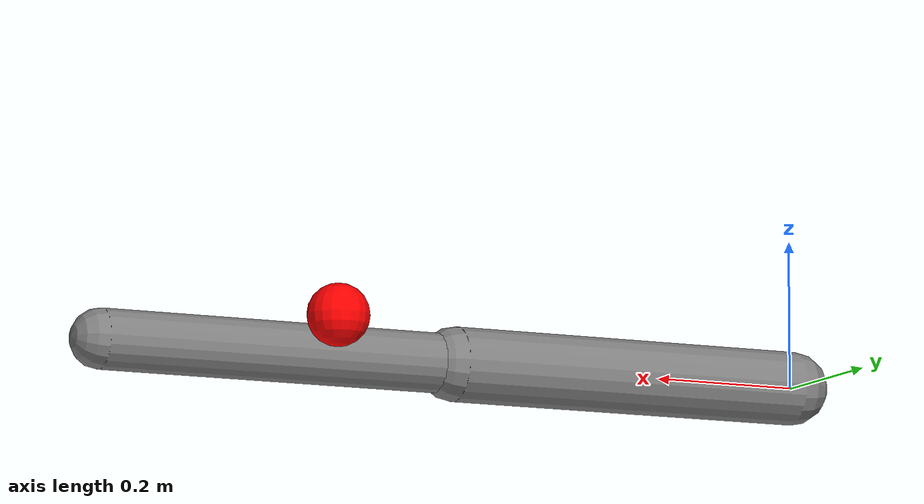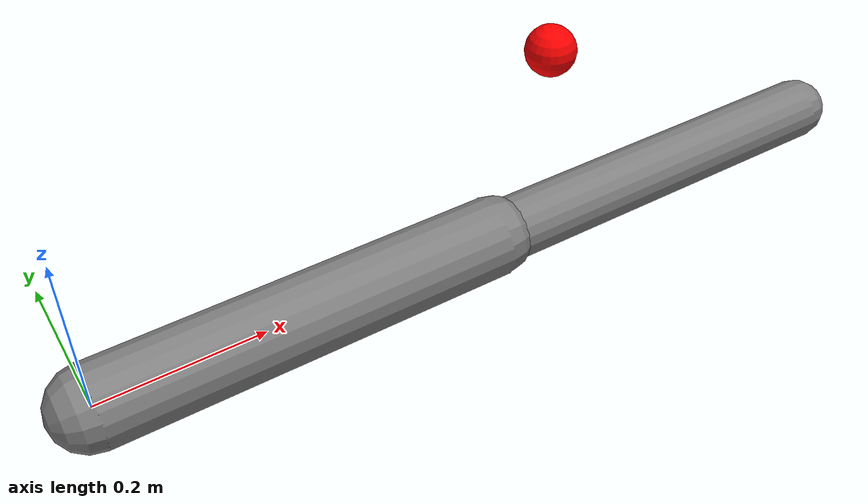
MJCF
<!-- env/twolink.xml -->
<mujoco model="two_link_arm">
    <option timestep="0.01"/>

    <worldbody>
        <body name="link1" pos="0 0 0">
            <joint name="shoulder" type="hinge" axis="0 0 1"/>
            <geom type="capsule" fromto="0 0 0 0.5 0 0" size="0.05"/>

            <body name="link2" pos="0.5 0 0">
                <joint name="elbow" type="hinge" axis="0 0 1"/>
                <geom type="capsule" fromto="0 0 0 0.5 0 0" size="0.04"/>

                <!-- end-effector site at tip of link2 -->
                <site name="end_effector" pos="0.5 0 0" size="0.03" rgba="0 1 0 1"/>
            </body>
        </body>

        <!-- target site in world frame, moved programmatically -->
        <site name="target" pos="0.8 0.3 0" size="0.04" rgba="1 0 0 1"/>
    </worldbody>

    <actuator>
        <!-- match ctrlrange to action_space [-1, 1] -->
        <motor joint="shoulder" ctrlrange="-1 1" gear="3"/>
        <motor joint="elbow"    ctrlrange="-1 1" gear="3"/>
    </actuator>
</mujoco>
